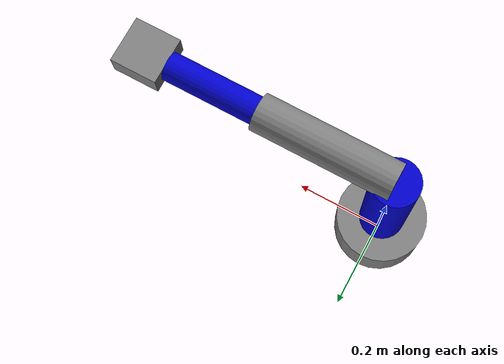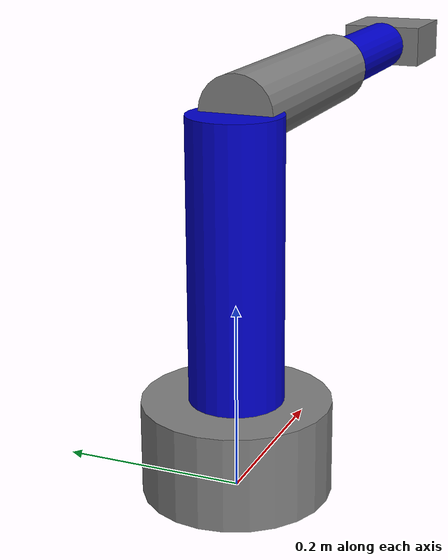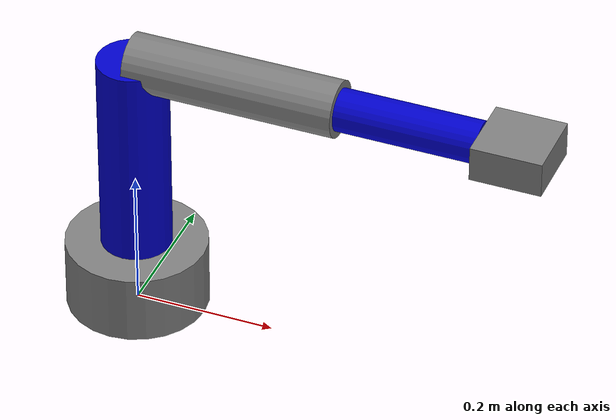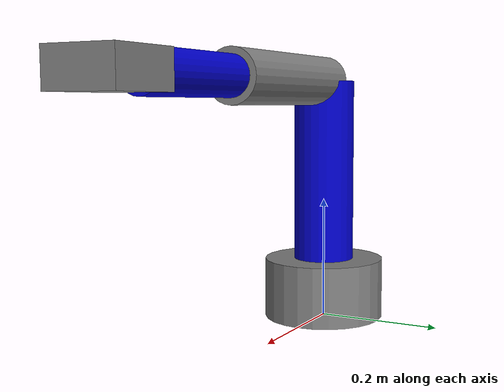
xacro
<?xml version="1.0"?>
<robot name="mi_brazo_5gdl" xmlns:xacro="http://www.ros.org/wiki/xacro">

    <!-- Incluir el archivo de inercias -->
<xacro:include filename="$(find my_robot_description)/urdf/inertia_macros.xacro"/>
    <!-- Materiales -->
    <material name="blue"><color rgba="0 0 0.8 1"/></material>
    <material name="grey"><color rgba="0.5 0.5 0.5 1"/></material>

    <!-- Mundo / Base fija (Para que no colapse en Gazebo) -->
    <link name="world"></link>

    <joint name="virtual_joint" type="fixed">
        <parent link="world"/>
        <child link="base_link"/>
        <origin xyz="0 0 0" rpy="0 0 0"/>
    </joint>

    <!-- Eslabón 0: Base del robot -->
    <link name="base_link">
        <visual>
            <origin xyz="0 0 0.05" rpy="0 0 0"/>
            <geometry><cylinder radius="0.1" length="0.1"/></geometry>
            <material name="grey"/>
        </visual>
        <collision>
            <origin xyz="0 0 0.05" rpy="0 0 0"/>
            <geometry><cylinder radius="0.1" length="0.1"/></geometry>
        </collision>
        <xacro:inertial_cylinder mass="2.0" length="0.1" radius="0.1">
            <origin xyz="0 0 0.05" rpy="0 0 0"/>
        </xacro:inertial_cylinder>
    </link>

    <!-- Articulación 1: Cintura (Revolución) -->
    <joint name="joint_1_waist" type="revolute">
        <parent link="base_link"/>
        <child link="link_1"/>
        <origin xyz="0 0 0.1" rpy="0 0 0"/>
        <axis xyz="0 0 1"/> <!-- Gira en Z -->
        <limit lower="-1.57" upper="1.57" effort="10" velocity="1.0"/>
    </joint>

    <!-- Eslabón 1 -->
    <link name="link_1">
        <visual>
            <origin xyz="0 0 0.15" rpy="0 0 0"/>
            <geometry><cylinder radius="0.05" length="0.3"/></geometry>
            <material name="blue"/>
        </visual>
        <collision>
            <origin xyz="0 0 0.15" rpy="0 0 0"/>
            <geometry><cylinder radius="0.05" length="0.3"/></geometry>
        </collision>
        <xacro:inertial_cylinder mass="1.0" length="0.3" radius="0.05">
            <origin xyz="0 0 0.15" rpy="0 0 0"/>
        </xacro:inertial_cylinder>
    </link>

    <!-- Articulación 2: Hombro (Revolución) -->
    <joint name="joint_2_shoulder" type="revolute">
        <parent link="link_1"/>
        <child link="link_2"/>
        <origin xyz="0 0 0.3" rpy="0 1.5708 0"/>
        <axis xyz="0 1 0"/>
        <limit lower="-1.57" upper="1.57" effort="10" velocity="1.0"/>
    </joint>

    <!-- Eslabón 2 -->
    <link name="link_2">
        <visual>
            <origin xyz="0 0 0.15" rpy="0 0 0"/>
            <geometry><cylinder radius="0.04" length="0.3"/></geometry>
            <material name="grey"/>
        </visual>
        <collision>
            <origin xyz="0 0 0.15" rpy="0 0 0"/>
            <geometry><cylinder radius="0.04" length="0.3"/></geometry>
        </collision>
        <xacro:inertial_cylinder mass="0.8" length="0.3" radius="0.04">
            <origin xyz="0 0 0.15" rpy="0 0 0"/>
        </xacro:inertial_cylinder>
    </link>

    <!-- Articulación 3: Codo (Revolución) -->
    <joint name="joint_3_elbow" type="revolute">
        <parent link="link_2"/>
        <child link="link_3"/>
        <origin xyz="0 0 0.3" rpy="0 0 0"/>
        <axis xyz="0 1 0"/>
        <limit lower="-1.57" upper="1.57" effort="10" velocity="1.0"/>
    </joint>

    <!-- Eslabón 3 -->
    <link name="link_3">
        <visual>
            <origin xyz="0 0 0.1" rpy="0 0 0"/>
            <geometry><cylinder radius="0.03" length="0.2"/></geometry>
            <material name="blue"/>
        </visual>
        <collision>
            <origin xyz="0 0 0.1" rpy="0 0 0"/>
            <geometry><cylinder radius="0.03" length="0.2"/></geometry>
        </collision>
        <xacro:inertial_cylinder mass="0.5" length="0.2" radius="0.03">
            <origin xyz="0 0 0.1" rpy="0 0 0"/>
        </xacro:inertial_cylinder>
    </link>

    <!-- Articulación 4: Muñeca (Revolución) -->
    <joint name="joint_4_wrist" type="revolute">
        <parent link="link_3"/>
        <child link="end_effector"/>
        <origin xyz="0 0 0.2" rpy="0 0 0"/>
        <axis xyz="0 1 0"/>
        <limit lower="-1.57" upper="1.57" effort="10" velocity="1.0"/>
    </joint>

    <!-- Efector Final (Caja representando un gripper base) -->
    <link name="end_effector">
        <visual>
            <origin xyz="0 0 0.05" rpy="0 0 0"/>
            <geometry><box size="0.05 0.1 0.1"/></geometry>
            <material name="grey"/>
        </visual>
        <collision>
            <origin xyz="0 0 0.05" rpy="0 0 0"/>
            <geometry><box size="0.05 0.1 0.1"/></geometry>
        </collision>
        <xacro:inertial_box mass="0.2" x="0.05" y="0.1" z="0.1">
            <origin xyz="0 0 0.05" rpy="0 0 0"/>
        </xacro:inertial_box>
    </link>

</robot>
